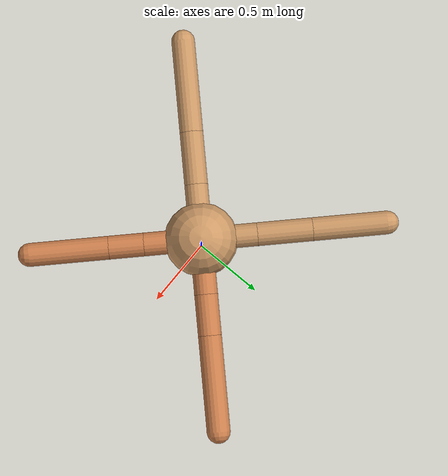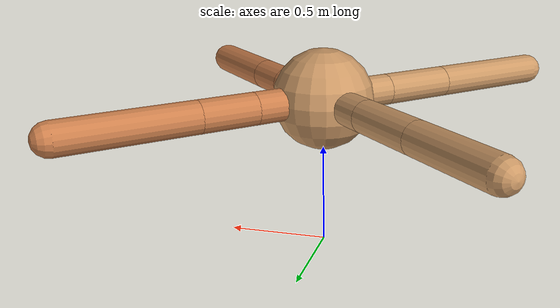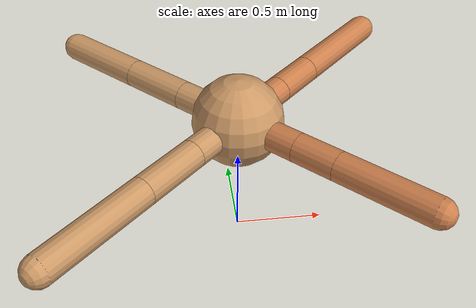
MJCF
<mujoco model="ant">
  <compiler angle="degree" coordinate="local" inertiafromgeom="true" />
  <option integrator="RK4" timestep="0.01" />
  <custom>
    <numeric data="0.0 0.0 0.55 1.0 0.0 0.0 0.0 0.0 1.0 0.0 -1.0 0.0 -1.0 0.0 1.0" name="init_qpos" />
  </custom>
  <default>
    <joint armature="1" damping="1" limited="true" />
    <geom conaffinity="0" condim="3" density="5.0" friction="1.5 0.1 0.1" margin="0.01" rgba="0.8 0.6 0.4 1" />
  </default>
  <worldbody>
    <body name="torso" pos="0 0 0.75">
      <geom name="torso_geom" pos="0 0 0" size="0.25" type="sphere" />

      <body name="front_left_leg" pos="0 0 0">
        <geom fromto="0.0 0.0 0.0 0.26374039549047373 0.26374039549047373 0.0" name="aux_1_geom" size="0.08" type="capsule" rgba=".8 .5 .3 1" />
        <body name="aux_1" pos="0.26374039549047373 0.26374039549047373 0.0">
          <joint axis="0 0 1" name="hip_1" pos="0.0 0.0 0.0" range="-40 40" type="hinge" />
          <geom fromto="0.0 0.0 0.0 0.19648630836066006 0.19648630836066006 0.0" name="left_leg_geom" size="0.08" type="capsule" rgba=".8 .5 .3 1" />
          <body pos="0.19648630836066006 0.19648630836066006 0.0" name="front_left_foot">
            <joint axis="-1 1 0" name="ankle_1" pos="0.0 0.0 0.0" range="30 100" type="hinge" />
            <geom fromto="0.0 0.0 0.0 0.45682417931157926 0.45682417931157926 0.0" name="left_ankle_geom" size="0.08" type="capsule" rgba=".8 .5 .3 1" />
          </body>
        </body>
      </body>
      <body name="front_right_leg" pos="0 0 0">
        <geom fromto="0.0 0.0 0.0 -0.2686938358194793 0.2686938358194793 0.0" name="aux_2_geom" size="0.08" type="capsule" />
        <body name="aux_2" pos="-0.2686938358194793 0.2686938358194793 0.0">
          <joint axis="0 0 1" name="hip_2" pos="0.0 0.0 0.0" range="-40 40" type="hinge" />
          <geom fromto="0.0 0.0 0.0 -0.26464959975510377 0.26464959975510377 0.0" name="right_leg_geom" size="0.08" type="capsule" />
          <body pos="-0.26464959975510377 0.26464959975510377 0.0" name="front_right_foot">
            <joint axis="1 1 0" name="ankle_2" pos="0.0 0.0 0.0" range="-100 -30" type="hinge" />
            <geom fromto="0.0 0.0 0.0 -0.3572015116821592 0.3572015116821592 0.0" name="right_ankle_geom" size="0.08" type="capsule" />
          </body>
        </body>
      </body>
      <body name="left_back_leg" pos="0 0 0">
        <geom fromto="0.0 0.0 0.0 -0.2621251127560071 -0.2621251127560071 0.0" name="aux_3_geom" size="0.08" type="capsule" />
        <body name="aux_3" pos="-0.2621251127560071 -0.2621251127560071 0.0">
          <joint axis="0 0 1" name="hip_3" pos="0.0 0.0 0.0" range="-40 40" type="hinge" />
          <geom fromto="0.0 0.0 0.0 -0.25311927190567973 -0.25311927190567973 0.0" name="back_leg_geom" size="0.08" type="capsule" />
          <body pos="-0.25311927190567973 -0.25311927190567973 0.0" name="left_back_foot">
            <joint axis="-1 1 0" name="ankle_3" pos="0.0 0.0 0.0" range="-100 -30" type="hinge" />
            <geom fromto="0.0 0.0 0.0 -0.4418150789456948 -0.4418150789456948 0.0" name="third_ankle_geom" size="0.08" type="capsule" />
          </body>
        </body>
      </body>
      <body name="right_back_leg" pos="0 0 0">
        <geom fromto="0.0 0.0 0.0 0.2734318414040199 -0.2734318414040199 0.0" name="aux_4_geom" size="0.08" type="capsule" rgba=".8 .5 .3 1" />
        <body name="aux_4" pos="0.2734318414040199 -0.2734318414040199 0.0">
          <joint axis="0 0 1" name="hip_4" pos="0.0 0.0 0.0" range="-40 40" type="hinge" />
          <geom fromto="0.0 0.0 0.0 0.16850107780776308 -0.16850107780776308 0.0" name="rightback_leg_geom" size="0.08" type="capsule" rgba=".8 .5 .3 1" />
          <body pos="0.16850107780776308 -0.16850107780776308 0.0" name="right_back_foot">
            <joint axis="1 1 0" name="ankle_4" pos="0.0 0.0 0.0" range="30 100" type="hinge" />
            <geom fromto="0.0 0.0 0.0 0.3787858810939928 -0.3787858810939928 0.0" name="fourth_ankle_geom" size="0.08" type="capsule" rgba=".8 .5 .3 1" />
          </body>
        </body>
      </body>
    </body>
  </worldbody>
  <actuator>
    <motor ctrllimited="true" ctrlrange="-1.0 1.0" joint="hip_4" gear="150" />
    <motor ctrllimited="true" ctrlrange="-1.0 1.0" joint="ankle_4" gear="150" />
    <motor ctrllimited="true" ctrlrange="-1.0 1.0" joint="hip_1" gear="150" />
    <motor ctrllimited="true" ctrlrange="-1.0 1.0" joint="ankle_1" gear="150" />
    <motor ctrllimited="true" ctrlrange="-1.0 1.0" joint="hip_2" gear="150" />
    <motor ctrllimited="true" ctrlrange="-1.0 1.0" joint="ankle_2" gear="150" />
    <motor ctrllimited="true" ctrlrange="-1.0 1.0" joint="hip_3" gear="150" />
    <motor ctrllimited="true" ctrlrange="-1.0 1.0" joint="ankle_3" gear="150" />
  </actuator>
</mujoco>
